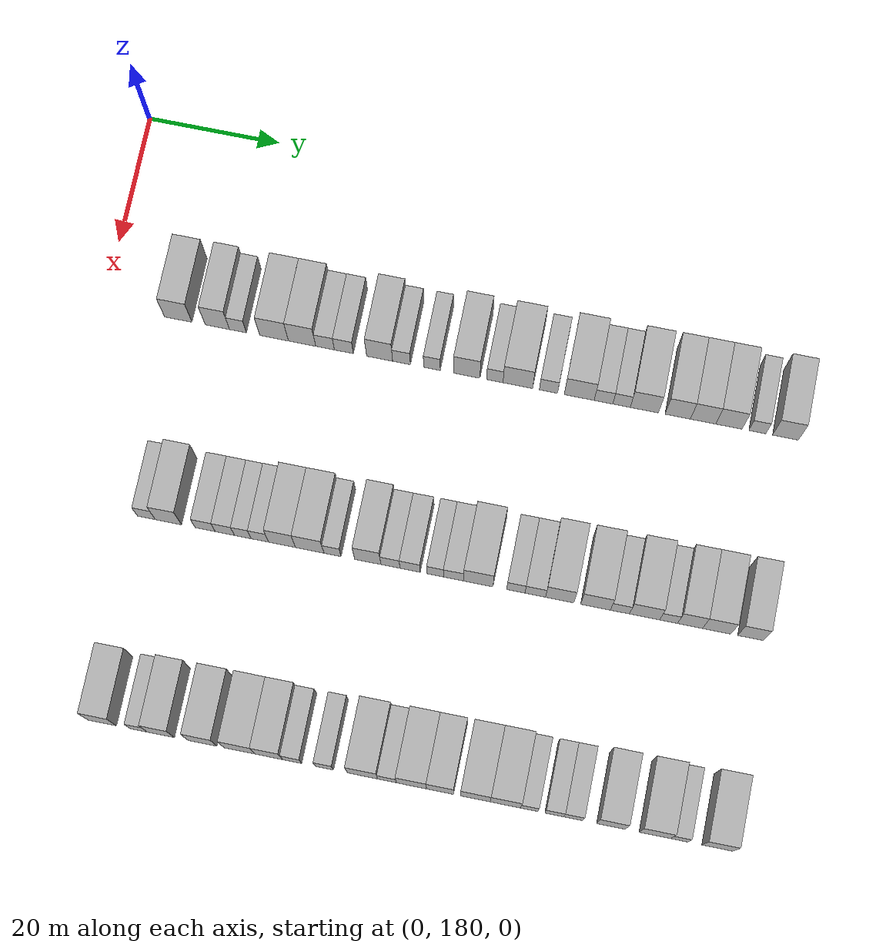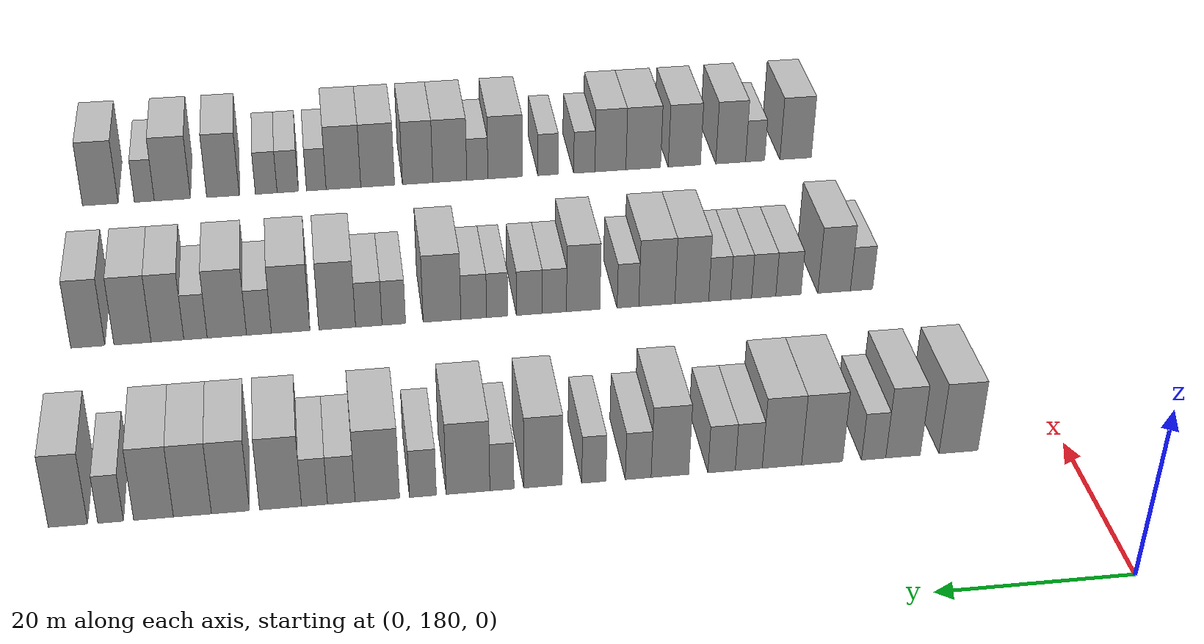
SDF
<sdf version="1.6">
 <world name="default">
  <model name="building_109">
   <static>1</static>
   <pose>25.0000 191.3351 0 0.000000 0.000000 0.000000</pose>
   <link name="link">
    <pose>0 0 4.50 0 0 0</pose>
    <collision name="collision"><geometry><box><size>10.0000 4.1533 9.0000</size></box></geometry></collision>
    <visual name="visual">
     <cast_shadows>0</cast_shadows>
     <geometry><box><size>10.0000 4.1533 9.0000</size></box></geometry>
     <material>
      <script>
       <uri>model://HANNAS_wall/materials/scripts</uri>
       <uri>model://HANNAS_wall/materials/textures</uri>
       <name>vrc/HANNAS_wall</name>
      </script>
     </material>
    </visual>
   </link>
  </model>
  <model name="building_110">
   <static>1</static>
   <pose>25.0000 197.2474 0 0.000000 0.000000 0.000000</pose>
   <link name="link">
    <pose>0 0 4.50 0 0 0</pose>
    <collision name="collision"><geometry><box><size>10.0000 3.6712 9.0000</size></box></geometry></collision>
    <visual name="visual">
     <cast_shadows>0</cast_shadows>
     <geometry><box><size>10.0000 3.6712 9.0000</size></box></geometry>
     <material>
      <script>
       <uri>model://HANNAS_wall/materials/scripts</uri>
       <uri>model://HANNAS_wall/materials/textures</uri>
       <name>vrc/HANNAS_wall</name>
      </script>
     </material>
    </visual>
   </link>
  </model>
  <model name="building_111">
   <static>1</static>
   <pose>25.0000 200.3671 0 0.000000 0.000000 0.000000</pose>
   <link name="link">
    <pose>0 0 3.00 0 0 0</pose>
    <collision name="collision"><geometry><box><size>10.0000 2.5681 6.0000</size></box></geometry></collision>
    <visual name="visual">
     <cast_shadows>0</cast_shadows>
     <geometry><box><size>10.0000 2.5681 6.0000</size></box></geometry>
     <material>
      <script>
       <uri>model://HANNAS_wall/materials/scripts</uri>
       <uri>model://HANNAS_wall/materials/textures</uri>
       <name>vrc/HANNAS_wall</name>
      </script>
     </material>
    </visual>
   </link>
  </model>
  <model name="building_112">
   <static>1</static>
   <pose>25.0000 205.8161 0 0.000000 0.000000 0.000000</pose>
   <link name="link">
    <pose>0 0 4.50 0 0 0</pose>
    <collision name="collision"><geometry><box><size>10.0000 4.3301 9.0000</size></box></geometry></collision>
    <visual name="visual">
     <cast_shadows>0</cast_shadows>
     <geometry><box><size>10.0000 4.3301 9.0000</size></box></geometry>
     <material>
      <script>
       <uri>model://HANNAS_wall/materials/scripts</uri>
       <uri>model://HANNAS_wall/materials/textures</uri>
       <name>vrc/HANNAS_wall</name>
      </script>
     </material>
    </visual>
   </link>
  </model>
  <model name="building_113">
   <static>1</static>
   <pose>25.0000 210.0450 0 0.000000 0.000000 0.000000</pose>
   <link name="link">
    <pose>0 0 4.50 0 0 0</pose>
    <collision name="collision"><geometry><box><size>10.0000 4.1276 9.0000</size></box></geometry></collision>
    <visual name="visual">
     <cast_shadows>0</cast_shadows>
     <geometry><box><size>10.0000 4.1276 9.0000</size></box></geometry>
     <material>
      <script>
       <uri>model://HANNAS_wall/materials/scripts</uri>
       <uri>model://HANNAS_wall/materials/textures</uri>
       <name>vrc/HANNAS_wall</name>
      </script>
     </material>
    </visual>
   </link>
  </model>
  <model name="building_114">
   <static>1</static>
   <pose>25.0000 213.5152 0 0.000000 0.000000 0.000000</pose>
   <link name="link">
    <pose>0 0 3.00 0 0 0</pose>
    <collision name="collision"><geometry><box><size>10.0000 2.8128 6.0000</size></box></geometry></collision>
    <visual name="visual">
     <cast_shadows>0</cast_shadows>
     <geometry><box><size>10.0000 2.8128 6.0000</size></box></geometry>
     <material>
      <script>
       <uri>model://HANNAS_wall/materials/scripts</uri>
       <uri>model://HANNAS_wall/materials/textures</uri>
       <name>vrc/HANNAS_wall</name>
      </script>
     </material>
    </visual>
   </link>
  </model>
  <model name="building_115">
   <static>1</static>
   <pose>25.0000 216.3490 0 0.000000 0.000000 0.000000</pose>
   <link name="link">
    <pose>0 0 3.00 0 0 0</pose>
    <collision name="collision"><geometry><box><size>10.0000 2.8549 6.0000</size></box></geometry></collision>
    <visual name="visual">
     <cast_shadows>0</cast_shadows>
     <geometry><box><size>10.0000 2.8549 6.0000</size></box></geometry>
     <material>
      <script>
       <uri>model://HANNAS_wall/materials/scripts</uri>
       <uri>model://HANNAS_wall/materials/textures</uri>
       <name>vrc/HANNAS_wall</name>
      </script>
     </material>
    </visual>
   </link>
  </model>
  <model name="building_116">
   <static>1</static>
   <pose>25.0000 221.7277 0 0.000000 0.000000 0.000000</pose>
   <link name="link">
    <pose>0 0 4.50 0 0 0</pose>
    <collision name="collision"><geometry><box><size>10.0000 3.9027 9.0000</size></box></geometry></collision>
    <visual name="visual">
     <cast_shadows>0</cast_shadows>
     <geometry><box><size>10.0000 3.9027 9.0000</size></box></geometry>
     <material>
      <script>
       <uri>model://HANNAS_wall/materials/scripts</uri>
       <uri>model://HANNAS_wall/materials/textures</uri>
       <name>vrc/HANNAS_wall</name>
      </script>
     </material>
    </visual>
   </link>
  </model>
  <model name="building_117">
   <static>1</static>
   <pose>25.0000 225.0139 0 0.000000 0.000000 0.000000</pose>
   <link name="link">
    <pose>0 0 3.00 0 0 0</pose>
    <collision name="collision"><geometry><box><size>10.0000 2.6697 6.0000</size></box></geometry></collision>
    <visual name="visual">
     <cast_shadows>0</cast_shadows>
     <geometry><box><size>10.0000 2.6697 6.0000</size></box></geometry>
     <material>
      <script>
       <uri>model://HANNAS_wall/materials/scripts</uri>
       <uri>model://HANNAS_wall/materials/textures</uri>
       <name>vrc/HANNAS_wall</name>
      </script>
     </material>
    </visual>
   </link>
  </model>
  <model name="building_118">
   <static>1</static>
   <pose>25.0000 229.5885 0 0.000000 0.000000 0.000000</pose>
   <link name="link">
    <pose>0 0 3.00 0 0 0</pose>
    <collision name="collision"><geometry><box><size>10.0000 2.4795 6.0000</size></box></geometry></collision>
    <visual name="visual">
     <cast_shadows>0</cast_shadows>
     <geometry><box><size>10.0000 2.4795 6.0000</size></box></geometry>
     <material>
      <script>
       <uri>model://HANNAS_wall/materials/scripts</uri>
       <uri>model://HANNAS_wall/materials/textures</uri>
       <name>vrc/HANNAS_wall</name>
      </script>
     </material>
    </visual>
   </link>
  </model>
  <model name="building_119">
   <static>1</static>
   <pose>25.0000 234.7975 0 0.000000 0.000000 0.000000</pose>
   <link name="link">
    <pose>0 0 4.50 0 0 0</pose>
    <collision name="collision"><geometry><box><size>10.0000 3.9384 9.0000</size></box></geometry></collision>
    <visual name="visual">
     <cast_shadows>0</cast_shadows>
     <geometry><box><size>10.0000 3.9384 9.0000</size></box></geometry>
     <material>
      <script>
       <uri>model://HANNAS_wall/materials/scripts</uri>
       <uri>model://HANNAS_wall/materials/textures</uri>
       <name>vrc/HANNAS_wall</name>
      </script>
     </material>
    </visual>
   </link>
  </model>
  <model name="building_120">
   <static>1</static>
   <pose>25.0000 238.9915 0 0.000000 0.000000 0.000000</pose>
   <link name="link">
    <pose>0 0 3.00 0 0 0</pose>
    <collision name="collision"><geometry><box><size>10.0000 2.4496 6.0000</size></box></geometry></collision>
    <visual name="visual">
     <cast_shadows>0</cast_shadows>
     <geometry><box><size>10.0000 2.4496 6.0000</size></box></geometry>
     <material>
      <script>
       <uri>model://HANNAS_wall/materials/scripts</uri>
       <uri>model://HANNAS_wall/materials/textures</uri>
       <name>vrc/HANNAS_wall</name>
      </script>
     </material>
    </visual>
   </link>
  </model>
  <model name="building_121">
   <static>1</static>
   <pose>25.0000 242.4319 0 0.000000 0.000000 0.000000</pose>
   <link name="link">
    <pose>0 0 4.50 0 0 0</pose>
    <collision name="collision"><geometry><box><size>10.0000 4.4312 9.0000</size></box></geometry></collision>
    <visual name="visual">
     <cast_shadows>0</cast_shadows>
     <geometry><box><size>10.0000 4.4312 9.0000</size></box></geometry>
     <material>
      <script>
       <uri>model://HANNAS_wall/materials/scripts</uri>
       <uri>model://HANNAS_wall/materials/textures</uri>
       <name>vrc/HANNAS_wall</name>
      </script>
     </material>
    </visual>
   </link>
  </model>
  <model name="building_122">
   <static>1</static>
   <pose>25.0000 247.0036 0 0.000000 0.000000 0.000000</pose>
   <link name="link">
    <pose>0 0 3.00 0 0 0</pose>
    <collision name="collision"><geometry><box><size>10.0000 2.7124 6.0000</size></box></geometry></collision>
    <visual name="visual">
     <cast_shadows>0</cast_shadows>
     <geometry><box><size>10.0000 2.7124 6.0000</size></box></geometry>
     <material>
      <script>
       <uri>model://HANNAS_wall/materials/scripts</uri>
       <uri>model://HANNAS_wall/materials/textures</uri>
       <name>vrc/HANNAS_wall</name>
      </script>
     </material>
    </visual>
   </link>
  </model>
  <model name="building_123">
   <static>1</static>
   <pose>25.0000 251.5910 0 0.000000 0.000000 0.000000</pose>
   <link name="link">
    <pose>0 0 4.50 0 0 0</pose>
    <collision name="collision"><geometry><box><size>10.0000 4.4623 9.0000</size></box></geometry></collision>
    <visual name="visual">
     <cast_shadows>0</cast_shadows>
     <geometry><box><size>10.0000 4.4623 9.0000</size></box></geometry>
     <material>
      <script>
       <uri>model://HANNAS_wall/materials/scripts</uri>
       <uri>model://HANNAS_wall/materials/textures</uri>
       <name>vrc/HANNAS_wall</name>
      </script>
     </material>
    </visual>
   </link>
  </model>
  <model name="building_124">
   <static>1</static>
   <pose>25.0000 255.2068 0 0.000000 0.000000 0.000000</pose>
   <link name="link">
    <pose>0 0 3.00 0 0 0</pose>
    <collision name="collision"><geometry><box><size>10.0000 2.7694 6.0000</size></box></geometry></collision>
    <visual name="visual">
     <cast_shadows>0</cast_shadows>
     <geometry><box><size>10.0000 2.7694 6.0000</size></box></geometry>
     <material>
      <script>
       <uri>model://HANNAS_wall/materials/scripts</uri>
       <uri>model://HANNAS_wall/materials/textures</uri>
       <name>vrc/HANNAS_wall</name>
      </script>
     </material>
    </visual>
   </link>
  </model>
  <model name="building_125">
   <static>1</static>
   <pose>25.0000 257.8850 0 0.000000 0.000000 0.000000</pose>
   <link name="link">
    <pose>0 0 3.00 0 0 0</pose>
    <collision name="collision"><geometry><box><size>10.0000 2.5871 6.0000</size></box></geometry></collision>
    <visual name="visual">
     <cast_shadows>0</cast_shadows>
     <geometry><box><size>10.0000 2.5871 6.0000</size></box></geometry>
     <material>
      <script>
       <uri>model://HANNAS_wall/materials/scripts</uri>
       <uri>model://HANNAS_wall/materials/textures</uri>
       <name>vrc/HANNAS_wall</name>
      </script>
     </material>
    </visual>
   </link>
  </model>
  <model name="building_126">
   <static>1</static>
   <pose>25.0000 261.2703 0 0.000000 0.000000 0.000000</pose>
   <link name="link">
    <pose>0 0 4.50 0 0 0</pose>
    <collision name="collision"><geometry><box><size>10.0000 4.1836 9.0000</size></box></geometry></collision>
    <visual name="visual">
     <cast_shadows>0</cast_shadows>
     <geometry><box><size>10.0000 4.1836 9.0000</size></box></geometry>
     <material>
      <script>
       <uri>model://HANNAS_wall/materials/scripts</uri>
       <uri>model://HANNAS_wall/materials/textures</uri>
       <name>vrc/HANNAS_wall</name>
      </script>
     </material>
    </visual>
   </link>
  </model>
  <model name="building_127">
   <static>1</static>
   <pose>25.0000 266.2445 0 0.000000 0.000000 0.000000</pose>
   <link name="link">
    <pose>0 0 4.50 0 0 0</pose>
    <collision name="collision"><geometry><box><size>10.0000 3.7648 9.0000</size></box></geometry></collision>
    <visual name="visual">
     <cast_shadows>0</cast_shadows>
     <geometry><box><size>10.0000 3.7648 9.0000</size></box></geometry>
     <material>
      <script>
       <uri>model://HANNAS_wall/materials/scripts</uri>
       <uri>model://HANNAS_wall/materials/textures</uri>
       <name>vrc/HANNAS_wall</name>
      </script>
     </material>
    </visual>
   </link>
  </model>
  <model name="building_128">
   <static>1</static>
   <pose>25.0000 270.0007 0 0.000000 0.000000 0.000000</pose>
   <link name="link">
    <pose>0 0 4.50 0 0 0</pose>
    <collision name="collision"><geometry><box><size>10.0000 3.7474 9.0000</size></box></geometry></collision>
    <visual name="visual">
     <cast_shadows>0</cast_shadows>
     <geometry><box><size>10.0000 3.7474 9.0000</size></box></geometry>
     <material>
      <script>
       <uri>model://HANNAS_wall/materials/scripts</uri>
       <uri>model://HANNAS_wall/materials/textures</uri>
       <name>vrc/HANNAS_wall</name>
      </script>
     </material>
    </visual>
   </link>
  </model>
  <model name="building_129">
   <static>1</static>
   <pose>25.0000 273.8265 0 0.000000 0.000000 0.000000</pose>
   <link name="link">
    <pose>0 0 4.50 0 0 0</pose>
    <collision name="collision"><geometry><box><size>10.0000 3.9044 9.0000</size></box></geometry></collision>
    <visual name="visual">
     <cast_shadows>0</cast_shadows>
     <geometry><box><size>10.0000 3.9044 9.0000</size></box></geometry>
     <material>
      <script>
       <uri>model://HANNAS_wall/materials/scripts</uri>
       <uri>model://HANNAS_wall/materials/textures</uri>
       <name>vrc/HANNAS_wall</name>
      </script>
     </material>
    </visual>
   </link>
  </model>
  <model name="building_130">
   <static>1</static>
   <pose>25.0000 278.0328 0 0.000000 0.000000 0.000000</pose>
   <link name="link">
    <pose>0 0 3.00 0 0 0</pose>
    <collision name="collision"><geometry><box><size>10.0000 2.5081 6.0000</size></box></geometry></collision>
    <visual name="visual">
     <cast_shadows>0</cast_shadows>
     <geometry><box><size>10.0000 2.5081 6.0000</size></box></geometry>
     <material>
      <script>
       <uri>model://HANNAS_wall/materials/scripts</uri>
       <uri>model://HANNAS_wall/materials/textures</uri>
       <name>vrc/HANNAS_wall</name>
      </script>
     </material>
    </visual>
   </link>
  </model>
  <model name="building_131">
   <static>1</static>
   <pose>25.0000 282.1983 0 0.000000 0.000000 0.000000</pose>
   <link name="link">
    <pose>0 0 4.50 0 0 0</pose>
    <collision name="collision"><geometry><box><size>10.0000 3.8231 9.0000</size></box></geometry></collision>
    <visual name="visual">
     <cast_shadows>0</cast_shadows>
     <geometry><box><size>10.0000 3.8231 9.0000</size></box></geometry>
     <material>
      <script>
       <uri>model://HANNAS_wall/materials/scripts</uri>
       <uri>model://HANNAS_wall/materials/textures</uri>
       <name>vrc/HANNAS_wall</name>
      </script>
     </material>
    </visual>
   </link>
  </model>
  <model name="building_254">
   <static>1</static>
   <pose>55.0000 193.5925 0 0.000000 0.000000 0.000000</pose>
   <link name="link">
    <pose>0 0 3.00 0 0 0</pose>
    <collision name="collision"><geometry><box><size>10.0000 2.6449 6.0000</size></box></geometry></collision>
    <visual name="visual">
     <cast_shadows>0</cast_shadows>
     <geometry><box><size>10.0000 2.6449 6.0000</size></box></geometry>
     <material>
      <script>
       <uri>model://HANNAS_wall/materials/scripts</uri>
       <uri>model://HANNAS_wall/materials/textures</uri>
       <name>vrc/HANNAS_wall</name>
      </script>
     </material>
    </visual>
   </link>
  </model>
  <model name="building_255">
   <static>1</static>
   <pose>55.0000 196.8531 0 0.000000 0.000000 0.000000</pose>
   <link name="link">
    <pose>0 0 4.50 0 0 0</pose>
    <collision name="collision"><geometry><box><size>10.0000 3.8762 9.0000</size></box></geometry></collision>
    <visual name="visual">
     <cast_shadows>0</cast_shadows>
     <geometry><box><size>10.0000 3.8762 9.0000</size></box></geometry>
     <material>
      <script>
       <uri>model://HANNAS_wall/materials/scripts</uri>
       <uri>model://HANNAS_wall/materials/textures</uri>
       <name>vrc/HANNAS_wall</name>
      </script>
     </material>
    </visual>
   </link>
  </model>
  <model name="building_256">
   <static>1</static>
   <pose>55.0000 202.2808 0 0.000000 0.000000 0.000000</pose>
   <link name="link">
    <pose>0 0 3.00 0 0 0</pose>
    <collision name="collision"><geometry><box><size>10.0000 2.9793 6.0000</size></box></geometry></collision>
    <visual name="visual">
     <cast_shadows>0</cast_shadows>
     <geometry><box><size>10.0000 2.9793 6.0000</size></box></geometry>
     <material>
      <script>
       <uri>model://HANNAS_wall/materials/scripts</uri>
       <uri>model://HANNAS_wall/materials/textures</uri>
       <name>vrc/HANNAS_wall</name>
      </script>
     </material>
    </visual>
   </link>
  </model>
  <model name="building_257">
   <static>1</static>
   <pose>55.0000 205.1986 0 0.000000 0.000000 0.000000</pose>
   <link name="link">
    <pose>0 0 3.00 0 0 0</pose>
    <collision name="collision"><geometry><box><size>10.0000 2.8565 6.0000</size></box></geometry></collision>
    <visual name="visual">
     <cast_shadows>0</cast_shadows>
     <geometry><box><size>10.0000 2.8565 6.0000</size></box></geometry>
     <material>
      <script>
       <uri>model://HANNAS_wall/materials/scripts</uri>
       <uri>model://HANNAS_wall/materials/textures</uri>
       <name>vrc/HANNAS_wall</name>
      </script>
     </material>
    </visual>
   </link>
  </model>
  <model name="building_258">
   <static>1</static>
   <pose>55.0000 207.8590 0 0.000000 0.000000 0.000000</pose>
   <link name="link">
    <pose>0 0 3.00 0 0 0</pose>
    <collision name="collision"><geometry><box><size>10.0000 2.4643 6.0000</size></box></geometry></collision>
    <visual name="visual">
     <cast_shadows>0</cast_shadows>
     <geometry><box><size>10.0000 2.4643 6.0000</size></box></geometry>
     <material>
      <script>
       <uri>model://HANNAS_wall/materials/scripts</uri>
       <uri>model://HANNAS_wall/materials/textures</uri>
       <name>vrc/HANNAS_wall</name>
      </script>
     </material>
    </visual>
   </link>
  </model>
  <model name="building_259">
   <static>1</static>
   <pose>55.0000 210.3768 0 0.000000 0.000000 0.000000</pose>
   <link name="link">
    <pose>0 0 3.00 0 0 0</pose>
    <collision name="collision"><geometry><box><size>10.0000 2.5713 6.0000</size></box></geometry></collision>
    <visual name="visual">
     <cast_shadows>0</cast_shadows>
     <geometry><box><size>10.0000 2.5713 6.0000</size></box></geometry>
     <material>
      <script>
       <uri>model://HANNAS_wall/materials/scripts</uri>
       <uri>model://HANNAS_wall/materials/textures</uri>
       <name>vrc/HANNAS_wall</name>
      </script>
     </material>
    </visual>
   </link>
  </model>
  <model name="building_260">
   <static>1</static>
   <pose>55.0000 213.6451 0 0.000000 0.000000 0.000000</pose>
   <link name="link">
    <pose>0 0 4.50 0 0 0</pose>
    <collision name="collision"><geometry><box><size>10.0000 3.9654 9.0000</size></box></geometry></collision>
    <visual name="visual">
     <cast_shadows>0</cast_shadows>
     <geometry><box><size>10.0000 3.9654 9.0000</size></box></geometry>
     <material>
      <script>
       <uri>model://HANNAS_wall/materials/scripts</uri>
       <uri>model://HANNAS_wall/materials/textures</uri>
       <name>vrc/HANNAS_wall</name>
      </script>
     </material>
    </visual>
   </link>
  </model>
  <model name="building_261">
   <static>1</static>
   <pose>55.0000 217.7321 0 0.000000 0.000000 0.000000</pose>
   <link name="link">
    <pose>0 0 4.50 0 0 0</pose>
    <collision name="collision"><geometry><box><size>10.0000 4.2086 9.0000</size></box></geometry></collision>
    <visual name="visual">
     <cast_shadows>0</cast_shadows>
     <geometry><box><size>10.0000 4.2086 9.0000</size></box></geometry>
     <material>
      <script>
       <uri>model://HANNAS_wall/materials/scripts</uri>
       <uri>model://HANNAS_wall/materials/textures</uri>
       <name>vrc/HANNAS_wall</name>
      </script>
     </material>
    </visual>
   </link>
  </model>
  <model name="building_262">
   <static>1</static>
   <pose>55.0000 221.0954 0 0.000000 0.000000 0.000000</pose>
   <link name="link">
    <pose>0 0 3.00 0 0 0</pose>
    <collision name="collision"><geometry><box><size>10.0000 2.5179 6.0000</size></box></geometry></collision>
    <visual name="visual">
     <cast_shadows>0</cast_shadows>
     <geometry><box><size>10.0000 2.5179 6.0000</size></box></geometry>
     <material>
      <script>
       <uri>model://HANNAS_wall/materials/scripts</uri>
       <uri>model://HANNAS_wall/materials/textures</uri>
       <name>vrc/HANNAS_wall</name>
      </script>
     </material>
    </visual>
   </link>
  </model>
  <model name="building_263">
   <static>1</static>
   <pose>55.0000 226.2836 0 0.000000 0.000000 0.000000</pose>
   <link name="link">
    <pose>0 0 4.50 0 0 0</pose>
    <collision name="collision"><geometry><box><size>10.0000 3.8584 9.0000</size></box></geometry></collision>
    <visual name="visual">
     <cast_shadows>0</cast_shadows>
     <geometry><box><size>10.0000 3.8584 9.0000</size></box></geometry>
     <material>
      <script>
       <uri>model://HANNAS_wall/materials/scripts</uri>
       <uri>model://HANNAS_wall/materials/textures</uri>
       <name>vrc/HANNAS_wall</name>
      </script>
     </material>
    </visual>
   </link>
  </model>
  <model name="building_264">
   <static>1</static>
   <pose>55.0000 229.6083 0 0.000000 0.000000 0.000000</pose>
   <link name="link">
    <pose>0 0 3.00 0 0 0</pose>
    <collision name="collision"><geometry><box><size>10.0000 2.7910 6.0000</size></box></geometry></collision>
    <visual name="visual">
     <cast_shadows>0</cast_shadows>
     <geometry><box><size>10.0000 2.7910 6.0000</size></box></geometry>
     <material>
      <script>
       <uri>model://HANNAS_wall/materials/scripts</uri>
       <uri>model://HANNAS_wall/materials/textures</uri>
       <name>vrc/HANNAS_wall</name>
      </script>
     </material>
    </visual>
   </link>
  </model>
  <model name="building_265">
   <static>1</static>
   <pose>55.0000 232.4917 0 0.000000 0.000000 0.000000</pose>
   <link name="link">
    <pose>0 0 3.00 0 0 0</pose>
    <collision name="collision"><geometry><box><size>10.0000 2.9759 6.0000</size></box></geometry></collision>
    <visual name="visual">
     <cast_shadows>0</cast_shadows>
     <geometry><box><size>10.0000 2.9759 6.0000</size></box></geometry>
     <material>
      <script>
       <uri>model://HANNAS_wall/materials/scripts</uri>
       <uri>model://HANNAS_wall/materials/textures</uri>
       <name>vrc/HANNAS_wall</name>
      </script>
     </material>
    </visual>
   </link>
  </model>
  <model name="building_266">
   <static>1</static>
   <pose>55.0000 236.1848 0 0.000000 0.000000 0.000000</pose>
   <link name="link">
    <pose>0 0 3.00 0 0 0</pose>
    <collision name="collision"><geometry><box><size>10.0000 2.4102 6.0000</size></box></geometry></collision>
    <visual name="visual">
     <cast_shadows>0</cast_shadows>
     <geometry><box><size>10.0000 2.4102 6.0000</size></box></geometry>
     <material>
      <script>
       <uri>model://HANNAS_wall/materials/scripts</uri>
       <uri>model://HANNAS_wall/materials/textures</uri>
       <name>vrc/HANNAS_wall</name>
      </script>
     </material>
    </visual>
   </link>
  </model>
  <model name="building_267">
   <static>1</static>
   <pose>55.0000 238.8598 0 0.000000 0.000000 0.000000</pose>
   <link name="link">
    <pose>0 0 3.00 0 0 0</pose>
    <collision name="collision"><geometry><box><size>10.0000 2.9399 6.0000</size></box></geometry></collision>
    <visual name="visual">
     <cast_shadows>0</cast_shadows>
     <geometry><box><size>10.0000 2.9399 6.0000</size></box></geometry>
     <material>
      <script>
       <uri>model://HANNAS_wall/materials/scripts</uri>
       <uri>model://HANNAS_wall/materials/textures</uri>
       <name>vrc/HANNAS_wall</name>
      </script>
     </material>
    </visual>
   </link>
  </model>
  <model name="building_268">
   <static>1</static>
   <pose>55.0000 242.4811 0 0.000000 0.000000 0.000000</pose>
   <link name="link">
    <pose>0 0 4.50 0 0 0</pose>
    <collision name="collision"><geometry><box><size>10.0000 4.3027 9.0000</size></box></geometry></collision>
    <visual name="visual">
     <cast_shadows>0</cast_shadows>
     <geometry><box><size>10.0000 4.3027 9.0000</size></box></geometry>
     <material>
      <script>
       <uri>model://HANNAS_wall/materials/scripts</uri>
       <uri>model://HANNAS_wall/materials/textures</uri>
       <name>vrc/HANNAS_wall</name>
      </script>
     </material>
    </visual>
   </link>
  </model>
  <model name="building_269">
   <static>1</static>
   <pose>55.0000 247.9653 0 0.000000 0.000000 0.000000</pose>
   <link name="link">
    <pose>0 0 3.00 0 0 0</pose>
    <collision name="collision"><geometry><box><size>10.0000 2.6657 6.0000</size></box></geometry></collision>
    <visual name="visual">
     <cast_shadows>0</cast_shadows>
     <geometry><box><size>10.0000 2.6657 6.0000</size></box></geometry>
     <material>
      <script>
       <uri>model://HANNAS_wall/materials/scripts</uri>
       <uri>model://HANNAS_wall/materials/textures</uri>
       <name>vrc/HANNAS_wall</name>
      </script>
     </material>
    </visual>
   </link>
  </model>
  <model name="building_270">
   <static>1</static>
   <pose>55.0000 250.7940 0 0.000000 0.000000 0.000000</pose>
   <link name="link">
    <pose>0 0 3.00 0 0 0</pose>
    <collision name="collision"><geometry><box><size>10.0000 2.9917 6.0000</size></box></geometry></collision>
    <visual name="visual">
     <cast_shadows>0</cast_shadows>
     <geometry><box><size>10.0000 2.9917 6.0000</size></box></geometry>
     <material>
      <script>
       <uri>model://HANNAS_wall/materials/scripts</uri>
       <uri>model://HANNAS_wall/materials/textures</uri>
       <name>vrc/HANNAS_wall</name>
      </script>
     </material>
    </visual>
   </link>
  </model>
  <model name="building_271">
   <static>1</static>
   <pose>55.0000 254.3600 0 0.000000 0.000000 0.000000</pose>
   <link name="link">
    <pose>0 0 4.50 0 0 0</pose>
    <collision name="collision"><geometry><box><size>10.0000 4.1404 9.0000</size></box></geometry></collision>
    <visual name="visual">
     <cast_shadows>0</cast_shadows>
     <geometry><box><size>10.0000 4.1404 9.0000</size></box></geometry>
     <material>
      <script>
       <uri>model://HANNAS_wall/materials/scripts</uri>
       <uri>model://HANNAS_wall/materials/textures</uri>
       <name>vrc/HANNAS_wall</name>
      </script>
     </material>
    </visual>
   </link>
  </model>
  <model name="building_272">
   <static>1</static>
   <pose>55.0000 259.5917 0 0.000000 0.000000 0.000000</pose>
   <link name="link">
    <pose>0 0 4.50 0 0 0</pose>
    <collision name="collision"><geometry><box><size>10.0000 4.3229 9.0000</size></box></geometry></collision>
    <visual name="visual">
     <cast_shadows>0</cast_shadows>
     <geometry><box><size>10.0000 4.3229 9.0000</size></box></geometry>
     <material>
      <script>
       <uri>model://HANNAS_wall/materials/scripts</uri>
       <uri>model://HANNAS_wall/materials/textures</uri>
       <name>vrc/HANNAS_wall</name>
      </script>
     </material>
    </visual>
   </link>
  </model>
  <model name="building_273">
   <static>1</static>
   <pose>55.0000 263.1432 0 0.000000 0.000000 0.000000</pose>
   <link name="link">
    <pose>0 0 3.00 0 0 0</pose>
    <collision name="collision"><geometry><box><size>10.0000 2.7800 6.0000</size></box></geometry></collision>
    <visual name="visual">
     <cast_shadows>0</cast_shadows>
     <geometry><box><size>10.0000 2.7800 6.0000</size></box></geometry>
     <material>
      <script>
       <uri>model://HANNAS_wall/materials/scripts</uri>
       <uri>model://HANNAS_wall/materials/textures</uri>
       <name>vrc/HANNAS_wall</name>
      </script>
     </material>
    </visual>
   </link>
  </model>
  <model name="building_274">
   <static>1</static>
   <pose>55.0000 266.7229 0 0.000000 0.000000 0.000000</pose>
   <link name="link">
    <pose>0 0 4.50 0 0 0</pose>
    <collision name="collision"><geometry><box><size>10.0000 4.3794 9.0000</size></box></geometry></collision>
    <visual name="visual">
     <cast_shadows>0</cast_shadows>
     <geometry><box><size>10.0000 4.3794 9.0000</size></box></geometry>
     <material>
      <script>
       <uri>model://HANNAS_wall/materials/scripts</uri>
       <uri>model://HANNAS_wall/materials/textures</uri>
       <name>vrc/HANNAS_wall</name>
      </script>
     </material>
    </visual>
   </link>
  </model>
  <model name="building_275">
   <static>1</static>
   <pose>55.0000 270.2112 0 0.000000 0.000000 0.000000</pose>
   <link name="link">
    <pose>0 0 3.00 0 0 0</pose>
    <collision name="collision"><geometry><box><size>10.0000 2.5973 6.0000</size></box></geometry></collision>
    <visual name="visual">
     <cast_shadows>0</cast_shadows>
     <geometry><box><size>10.0000 2.5973 6.0000</size></box></geometry>
     <material>
      <script>
       <uri>model://HANNAS_wall/materials/scripts</uri>
       <uri>model://HANNAS_wall/materials/textures</uri>
       <name>vrc/HANNAS_wall</name>
      </script>
     </material>
    </visual>
   </link>
  </model>
  <model name="building_276">
   <static>1</static>
   <pose>55.0000 273.3224 0 0.000000 0.000000 0.000000</pose>
   <link name="link">
    <pose>0 0 4.50 0 0 0</pose>
    <collision name="collision"><geometry><box><size>10.0000 3.6251 9.0000</size></box></geometry></collision>
    <visual name="visual">
     <cast_shadows>0</cast_shadows>
     <geometry><box><size>10.0000 3.6251 9.0000</size></box></geometry>
     <material>
      <script>
       <uri>model://HANNAS_wall/materials/scripts</uri>
       <uri>model://HANNAS_wall/materials/textures</uri>
       <name>vrc/HANNAS_wall</name>
      </script>
     </material>
    </visual>
   </link>
  </model>
  <model name="building_277">
   <static>1</static>
   <pose>55.0000 277.1857 0 0.000000 0.000000 0.000000</pose>
   <link name="link">
    <pose>0 0 4.50 0 0 0</pose>
    <collision name="collision"><geometry><box><size>10.0000 4.1015 9.0000</size></box></geometry></collision>
    <visual name="visual">
     <cast_shadows>0</cast_shadows>
     <geometry><box><size>10.0000 4.1015 9.0000</size></box></geometry>
     <material>
      <script>
       <uri>model://HANNAS_wall/materials/scripts</uri>
       <uri>model://HANNAS_wall/materials/textures</uri>
       <name>vrc/HANNAS_wall</name>
      </script>
     </material>
    </visual>
   </link>
  </model>
  <model name="building_278">
   <static>1</static>
   <pose>55.0000 282.1058 0 0.000000 0.000000 0.000000</pose>
   <link name="link">
    <pose>0 0 4.50 0 0 0</pose>
    <collision name="collision"><geometry><box><size>10.0000 3.7388 9.0000</size></box></geometry></collision>
    <visual name="visual">
     <cast_shadows>0</cast_shadows>
     <geometry><box><size>10.0000 3.7388 9.0000</size></box></geometry>
     <material>
      <script>
       <uri>model://HANNAS_wall/materials/scripts</uri>
       <uri>model://HANNAS_wall/materials/textures</uri>
       <name>vrc/HANNAS_wall</name>
      </script>
     </material>
    </visual>
   </link>
  </model>
  <model name="building_396">
   <static>1</static>
   <pose>85.0000 194.2437 0 0.000000 0.000000 0.000000</pose>
   <link name="link">
    <pose>0 0 4.50 0 0 0</pose>
    <collision name="collision"><geometry><box><size>10.0000 4.1246 9.0000</size></box></geometry></collision>
    <visual name="visual">
     <cast_shadows>0</cast_shadows>
     <geometry><box><size>10.0000 4.1246 9.0000</size></box></geometry>
     <material>
      <script>
       <uri>model://HANNAS_wall/materials/scripts</uri>
       <uri>model://HANNAS_wall/materials/textures</uri>
       <name>vrc/HANNAS_wall</name>
      </script>
     </material>
    </visual>
   </link>
  </model>
  <model name="building_397">
   <static>1</static>
   <pose>85.0000 199.5615 0 0.000000 0.000000 0.000000</pose>
   <link name="link">
    <pose>0 0 3.00 0 0 0</pose>
    <collision name="collision"><geometry><box><size>10.0000 2.5111 6.0000</size></box></geometry></collision>
    <visual name="visual">
     <cast_shadows>0</cast_shadows>
     <geometry><box><size>10.0000 2.5111 6.0000</size></box></geometry>
     <material>
      <script>
       <uri>model://HANNAS_wall/materials/scripts</uri>
       <uri>model://HANNAS_wall/materials/textures</uri>
       <name>vrc/HANNAS_wall</name>
      </script>
     </material>
    </visual>
   </link>
  </model>
  <model name="building_398">
   <static>1</static>
   <pose>85.0000 202.7632 0 0.000000 0.000000 0.000000</pose>
   <link name="link">
    <pose>0 0 4.50 0 0 0</pose>
    <collision name="collision"><geometry><box><size>10.0000 3.8923 9.0000</size></box></geometry></collision>
    <visual name="visual">
     <cast_shadows>0</cast_shadows>
     <geometry><box><size>10.0000 3.8923 9.0000</size></box></geometry>
     <material>
      <script>
       <uri>model://HANNAS_wall/materials/scripts</uri>
       <uri>model://HANNAS_wall/materials/textures</uri>
       <name>vrc/HANNAS_wall</name>
      </script>
     </material>
    </visual>
   </link>
  </model>
  <model name="building_399">
   <static>1</static>
   <pose>85.0000 208.8009 0 0.000000 0.000000 0.000000</pose>
   <link name="link">
    <pose>0 0 4.50 0 0 0</pose>
    <collision name="collision"><geometry><box><size>10.0000 4.1832 9.0000</size></box></geometry></collision>
    <visual name="visual">
     <cast_shadows>0</cast_shadows>
     <geometry><box><size>10.0000 4.1832 9.0000</size></box></geometry>
     <material>
      <script>
       <uri>model://HANNAS_wall/materials/scripts</uri>
       <uri>model://HANNAS_wall/materials/textures</uri>
       <name>vrc/HANNAS_wall</name>
      </script>
     </material>
    </visual>
   </link>
  </model>
  <model name="building_400">
   <static>1</static>
   <pose>85.0000 214.1344 0 0.000000 0.000000 0.000000</pose>
   <link name="link">
    <pose>0 0 4.50 0 0 0</pose>
    <collision name="collision"><geometry><box><size>10.0000 4.4838 9.0000</size></box></geometry></collision>
    <visual name="visual">
     <cast_shadows>0</cast_shadows>
     <geometry><box><size>10.0000 4.4838 9.0000</size></box></geometry>
     <material>
      <script>
       <uri>model://HANNAS_wall/materials/scripts</uri>
       <uri>model://HANNAS_wall/materials/textures</uri>
       <name>vrc/HANNAS_wall</name>
      </script>
     </material>
    </visual>
   </link>
  </model>
  <model name="building_401">
   <static>1</static>
   <pose>85.0000 218.3748 0 0.000000 0.000000 0.000000</pose>
   <link name="link">
    <pose>0 0 4.50 0 0 0</pose>
    <collision name="collision"><geometry><box><size>10.0000 3.9971 9.0000</size></box></geometry></collision>
    <visual name="visual">
     <cast_shadows>0</cast_shadows>
     <geometry><box><size>10.0000 3.9971 9.0000</size></box></geometry>
     <material>
      <script>
       <uri>model://HANNAS_wall/materials/scripts</uri>
       <uri>model://HANNAS_wall/materials/textures</uri>
       <name>vrc/HANNAS_wall</name>
      </script>
     </material>
    </visual>
   </link>
  </model>
  <model name="building_402">
   <static>1</static>
   <pose>85.0000 221.7360 0 0.000000 0.000000 0.000000</pose>
   <link name="link">
    <pose>0 0 3.00 0 0 0</pose>
    <collision name="collision"><geometry><box><size>10.0000 2.7253 6.0000</size></box></geometry></collision>
    <visual name="visual">
     <cast_shadows>0</cast_shadows>
     <geometry><box><size>10.0000 2.7253 6.0000</size></box></geometry>
     <material>
      <script>
       <uri>model://HANNAS_wall/materials/scripts</uri>
       <uri>model://HANNAS_wall/materials/textures</uri>
       <name>vrc/HANNAS_wall</name>
      </script>
     </material>
    </visual>
   </link>
  </model>
  <model name="building_403">
   <static>1</static>
   <pose>85.0000 226.3931 0 0.000000 0.000000 0.000000</pose>
   <link name="link">
    <pose>0 0 3.00 0 0 0</pose>
    <collision name="collision"><geometry><box><size>10.0000 2.5887 6.0000</size></box></geometry></collision>
    <visual name="visual">
     <cast_shadows>0</cast_shadows>
     <geometry><box><size>10.0000 2.5887 6.0000</size></box></geometry>
     <material>
      <script>
       <uri>model://HANNAS_wall/materials/scripts</uri>
       <uri>model://HANNAS_wall/materials/textures</uri>
       <name>vrc/HANNAS_wall</name>
      </script>
     </material>
    </visual>
   </link>
  </model>
  <model name="building_404">
   <static>1</static>
   <pose>85.0000 231.8776 0 0.000000 0.000000 0.000000</pose>
   <link name="link">
    <pose>0 0 4.50 0 0 0</pose>
    <collision name="collision"><geometry><box><size>10.0000 4.3805 9.0000</size></box></geometry></collision>
    <visual name="visual">
     <cast_shadows>0</cast_shadows>
     <geometry><box><size>10.0000 4.3805 9.0000</size></box></geometry>
     <material>
      <script>
       <uri>model://HANNAS_wall/materials/scripts</uri>
       <uri>model://HANNAS_wall/materials/textures</uri>
       <name>vrc/HANNAS_wall</name>
      </script>
     </material>
    </visual>
   </link>
  </model>
  <model name="building_405">
   <static>1</static>
   <pose>85.0000 235.4091 0 0.000000 0.000000 0.000000</pose>
   <link name="link">
    <pose>0 0 3.00 0 0 0</pose>
    <collision name="collision"><geometry><box><size>10.0000 2.6824 6.0000</size></box></geometry></collision>
    <visual name="visual">
     <cast_shadows>0</cast_shadows>
     <geometry><box><size>10.0000 2.6824 6.0000</size></box></geometry>
     <material>
      <script>
       <uri>model://HANNAS_wall/materials/scripts</uri>
       <uri>model://HANNAS_wall/materials/textures</uri>
       <name>vrc/HANNAS_wall</name>
      </script>
     </material>
    </visual>
   </link>
  </model>
  <model name="building_406">
   <static>1</static>
   <pose>85.0000 238.9022 0 0.000000 0.000000 0.000000</pose>
   <link name="link">
    <pose>0 0 4.50 0 0 0</pose>
    <collision name="collision"><geometry><box><size>10.0000 4.3039 9.0000</size></box></geometry></collision>
    <visual name="visual">
     <cast_shadows>0</cast_shadows>
     <geometry><box><size>10.0000 4.3039 9.0000</size></box></geometry>
     <material>
      <script>
       <uri>model://HANNAS_wall/materials/scripts</uri>
       <uri>model://HANNAS_wall/materials/textures</uri>
       <name>vrc/HANNAS_wall</name>
      </script>
     </material>
    </visual>
   </link>
  </model>
  <model name="building_407">
   <static>1</static>
   <pose>85.0000 242.9761 0 0.000000 0.000000 0.000000</pose>
   <link name="link">
    <pose>0 0 4.50 0 0 0</pose>
    <collision name="collision"><geometry><box><size>10.0000 3.8438 9.0000</size></box></geometry></collision>
    <visual name="visual">
     <cast_shadows>0</cast_shadows>
     <geometry><box><size>10.0000 3.8438 9.0000</size></box></geometry>
     <material>
      <script>
       <uri>model://HANNAS_wall/materials/scripts</uri>
       <uri>model://HANNAS_wall/materials/textures</uri>
       <name>vrc/HANNAS_wall</name>
      </script>
     </material>
    </visual>
   </link>
  </model>
  <model name="building_408">
   <static>1</static>
   <pose>85.0000 248.0225 0 0.000000 0.000000 0.000000</pose>
   <link name="link">
    <pose>0 0 4.50 0 0 0</pose>
    <collision name="collision"><geometry><box><size>10.0000 4.2491 9.0000</size></box></geometry></collision>
    <visual name="visual">
     <cast_shadows>0</cast_shadows>
     <geometry><box><size>10.0000 4.2491 9.0000</size></box></geometry>
     <material>
      <script>
       <uri>model://HANNAS_wall/materials/scripts</uri>
       <uri>model://HANNAS_wall/materials/textures</uri>
       <name>vrc/HANNAS_wall</name>
      </script>
     </material>
    </visual>
   </link>
  </model>
  <model name="building_409">
   <static>1</static>
   <pose>85.0000 252.3186 0 0.000000 0.000000 0.000000</pose>
   <link name="link">
    <pose>0 0 4.50 0 0 0</pose>
    <collision name="collision"><geometry><box><size>10.0000 4.3430 9.0000</size></box></geometry></collision>
    <visual name="visual">
     <cast_shadows>0</cast_shadows>
     <geometry><box><size>10.0000 4.3430 9.0000</size></box></geometry>
     <material>
      <script>
       <uri>model://HANNAS_wall/materials/scripts</uri>
       <uri>model://HANNAS_wall/materials/textures</uri>
       <name>vrc/HANNAS_wall</name>
      </script>
     </material>
    </visual>
   </link>
  </model>
  <model name="building_410">
   <static>1</static>
   <pose>85.0000 255.7183 0 0.000000 0.000000 0.000000</pose>
   <link name="link">
    <pose>0 0 3.00 0 0 0</pose>
    <collision name="collision"><geometry><box><size>10.0000 2.4564 6.0000</size></box></geometry></collision>
    <visual name="visual">
     <cast_shadows>0</cast_shadows>
     <geometry><box><size>10.0000 2.4564 6.0000</size></box></geometry>
     <material>
      <script>
       <uri>model://HANNAS_wall/materials/scripts</uri>
       <uri>model://HANNAS_wall/materials/textures</uri>
       <name>vrc/HANNAS_wall</name>
      </script>
     </material>
    </visual>
   </link>
  </model>
  <model name="building_411">
   <static>1</static>
   <pose>85.0000 259.2775 0 0.000000 0.000000 0.000000</pose>
   <link name="link">
    <pose>0 0 3.00 0 0 0</pose>
    <collision name="collision"><geometry><box><size>10.0000 2.6622 6.0000</size></box></geometry></collision>
    <visual name="visual">
     <cast_shadows>0</cast_shadows>
     <geometry><box><size>10.0000 2.6622 6.0000</size></box></geometry>
     <material>
      <script>
       <uri>model://HANNAS_wall/materials/scripts</uri>
       <uri>model://HANNAS_wall/materials/textures</uri>
       <name>vrc/HANNAS_wall</name>
      </script>
     </material>
    </visual>
   </link>
  </model>
  <model name="building_412">
   <static>1</static>
   <pose>85.0000 261.9602 0 0.000000 0.000000 0.000000</pose>
   <link name="link">
    <pose>0 0 3.00 0 0 0</pose>
    <collision name="collision"><geometry><box><size>10.0000 2.7031 6.0000</size></box></geometry></collision>
    <visual name="visual">
     <cast_shadows>0</cast_shadows>
     <geometry><box><size>10.0000 2.7031 6.0000</size></box></geometry>
     <material>
      <script>
       <uri>model://HANNAS_wall/materials/scripts</uri>
       <uri>model://HANNAS_wall/materials/textures</uri>
       <name>vrc/HANNAS_wall</name>
      </script>
     </material>
    </visual>
   </link>
  </model>
  <model name="building_413">
   <static>1</static>
   <pose>85.0000 267.3331 0 0.000000 0.000000 0.000000</pose>
   <link name="link">
    <pose>0 0 4.50 0 0 0</pose>
    <collision name="collision"><geometry><box><size>10.0000 4.0428 9.0000</size></box></geometry></collision>
    <visual name="visual">
     <cast_shadows>0</cast_shadows>
     <geometry><box><size>10.0000 4.0428 9.0000</size></box></geometry>
     <material>
      <script>
       <uri>model://HANNAS_wall/materials/scripts</uri>
       <uri>model://HANNAS_wall/materials/textures</uri>
       <name>vrc/HANNAS_wall</name>
      </script>
     </material>
    </visual>
   </link>
  </model>
  <model name="building_414">
   <static>1</static>
   <pose>85.0000 273.5793 0 0.000000 0.000000 0.000000</pose>
   <link name="link">
    <pose>0 0 4.50 0 0 0</pose>
    <collision name="collision"><geometry><box><size>10.0000 4.4497 9.0000</size></box></geometry></collision>
    <visual name="visual">
     <cast_shadows>0</cast_shadows>
     <geometry><box><size>10.0000 4.4497 9.0000</size></box></geometry>
     <material>
      <script>
       <uri>model://HANNAS_wall/materials/scripts</uri>
       <uri>model://HANNAS_wall/materials/textures</uri>
       <name>vrc/HANNAS_wall</name>
      </script>
     </material>
    </visual>
   </link>
  </model>
  <model name="building_415">
   <static>1</static>
   <pose>85.0000 277.0282 0 0.000000 0.000000 0.000000</pose>
   <link name="link">
    <pose>0 0 3.00 0 0 0</pose>
    <collision name="collision"><geometry><box><size>10.0000 2.4480 6.0000</size></box></geometry></collision>
    <visual name="visual">
     <cast_shadows>0</cast_shadows>
     <geometry><box><size>10.0000 2.4480 6.0000</size></box></geometry>
     <material>
      <script>
       <uri>model://HANNAS_wall/materials/scripts</uri>
       <uri>model://HANNAS_wall/materials/textures</uri>
       <name>vrc/HANNAS_wall</name>
      </script>
     </material>
    </visual>
   </link>
  </model>
  <model name="building_416">
   <static>1</static>
   <pose>85.0000 282.4276 0 0.000000 0.000000 0.000000</pose>
   <link name="link">
    <pose>0 0 4.50 0 0 0</pose>
    <collision name="collision"><geometry><box><size>10.0000 4.3508 9.0000</size></box></geometry></collision>
    <visual name="visual">
     <cast_shadows>0</cast_shadows>
     <geometry><box><size>10.0000 4.3508 9.0000</size></box></geometry>
     <material>
      <script>
       <uri>model://HANNAS_wall/materials/scripts</uri>
       <uri>model://HANNAS_wall/materials/textures</uri>
       <name>vrc/HANNAS_wall</name>
      </script>
     </material>
    </visual>
   </link>
  </model>
 </world>
</sdf>
